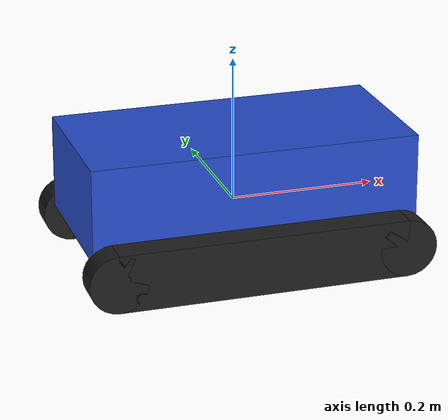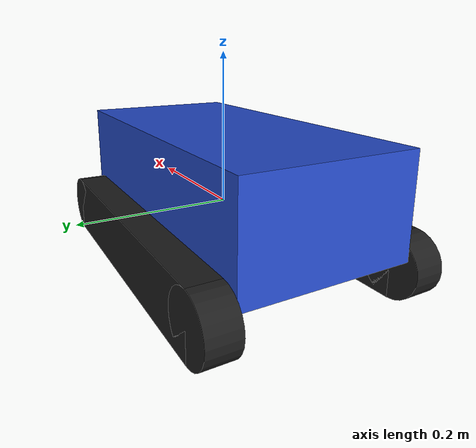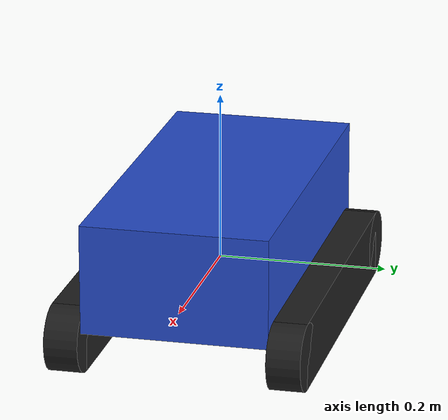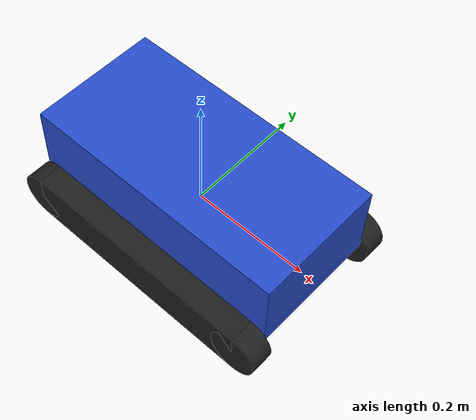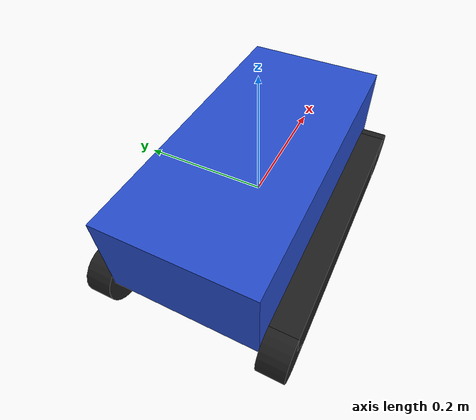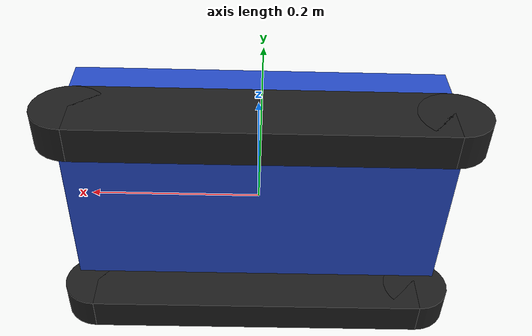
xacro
<?xml version="1.0" ?>

<robot name="eSAUl" xmlns:xacro="http://www.ros.org/wiki/xacro">

  <xacro:property name="chassis_mass" value="5" />
  <xacro:property name="chassis_length" value="0.45" />
  <xacro:property name="chassis_width" value="0.22" />
  <xacro:property name="chassis_height" value="0.13" />

  <xacro:property name="track_mass" value="1" />
  <xacro:property name="track_rad" value="0.04" />
  <xacro:property name="track_length" value="0.04" />

  <xacro:property name="box_length" value="0.4" />
  <xacro:property name="box_width" value="0.04" />
  <xacro:property name="box_height" value="0.08" />

  <xacro:property name="wheel_friction" value="1.75" />

  <!-- INERTIAL MACROS -->
  <xacro:macro name="null_inertial">
    <inertial>
      <mass value="0.001"/>
      <inertia ixx="0.001" ixy="0" ixz="0"
               iyy="0.001" iyz="0"
               izz="0.001"/>
      </inertial>
  </xacro:macro>

  <xacro:macro name="solid_cuboid_inertial"
               params="width length height mass *origin">
    <inertial>
      <xacro:insert_block name="origin"/>
      <mass value="${mass}"/>
      <inertia ixx="${mass * (width * width + height * height) / 12}"
               ixy="0" ixz="0"
               iyy="${mass * (length * length + height * height) / 12}"
               iyz="0"
               izz="${mass * (width * width + length * length) / 12}"/>
    </inertial>
  </xacro:macro>

  <xacro:macro name="solid_cylinder_inertial"
               params="r h mass *origin">
    <inertial>
      <xacro:insert_block name="origin"/>
      <mass value="${mass}"/>
      <inertia ixx="${mass / 12 * (3 * r * r + h * h)}" ixy="0.0" ixz="0.0"
               iyy="${mass / 12 * (3 * r * r + h * h)}" iyz="0.0"
               izz="${mass / 2 * r * r}" />
    </inertial>
  </xacro:macro>
  <!-- INERTIAL MACROS END -->

  <link name="link_chassis">
    <collision>
      <geometry>
        <box size="${chassis_length} ${chassis_width} ${chassis_height}"/>
      </geometry>
    </collision>
    <visual>
      <origin rpy="0 0 0" xyz="0 0 ${track_rad}"/>
      <geometry>
        <box size="${chassis_length} ${chassis_width} ${chassis_height}"/>
      </geometry>
      <material name="blue"/>
    </visual>
    <xacro:solid_cuboid_inertial
          length="${chassis_length}" width="${chassis_width}"
          height="${chassis_height}" mass="${chassis_mass}">
      <origin xyz="0 0 0" rpy="0 0 0" />
    </xacro:solid_cuboid_inertial>
  </link>

  <xacro:macro name="link_track" params="name">
    <link name="${name}">
      <collision name="${name}_track_col_box">
        <origin rpy="0 0 0" xyz="0 0 0"/>
        <geometry>
          <box size="${box_length} ${box_width} ${box_height}"/>
        </geometry>
      </collision>
      <visual name="${name}_track_vis_box">
        <origin rpy="0 0 0" xyz="0 0 0"/>
        <geometry>
          <box size="${box_length} ${box_width} ${box_height}"/>
        </geometry>
      </visual>
      <collision name="${name}_track_col_back_wheel">
        <origin rpy="0 1.5708 1.5708" xyz="${-box_length/2} 0 0"/>
        <geometry>
          <cylinder length="${track_length}" radius="${track_rad}"/>
        </geometry>
      </collision>
      <visual name="${name}_track_vis_back_wheel">
        <origin rpy="0 1.5708 1.5708" xyz="${-box_length/2} 0 0"/>
        <geometry>
          <cylinder length="${track_length}" radius="${track_rad}"/>
        </geometry>
      </visual>
      <collision name="${name}_track_col_front_wheel">
        <origin rpy="0 1.5708 1.5708" xyz="${box_length/2} 0 0"/>
        <geometry>
          <cylinder length="${track_length}" radius="${track_rad}"/>
        </geometry>
      </collision>
      <visual name="${name}_track_vis_front_wheel">
        <origin rpy="0 1.5708 1.5708" xyz="${box_length/2} 0 0"/>
        <geometry>
          <cylinder length="${track_length}" radius="${track_rad}"/>
        </geometry>
      </visual>
      <xacro:solid_cuboid_inertial
            length="${chassis_length}" width="${chassis_width}"
            height="${chassis_height}" mass="${chassis_mass}">
        <origin xyz="0 0 0" rpy="0 0 0" />
      </xacro:solid_cuboid_inertial>
    </link>
    <gazebo reference="${name}">
      <mu1>${wheel_friction}</mu1>
      <mu2>${wheel_friction}</mu2>
      <material>Gazebo/Black</material>
      <kp>10000000</kp>
      <kd>1</kd>
    </gazebo>
  </xacro:macro>

  <xacro:macro name="joint_wheel" params="name child origin_xyz">
    <joint name="${name}" type="fixed">
      <origin rpy="0 0 0" xyz="${origin_xyz}"/>
      <child link="${child}"/>
      <parent link="link_chassis"/>
    </joint>
    <gazebo reference="${name}">
      <!-- This one is used to disable convertion of fixed joints into links -->
      <preserveFixedJoint>true</preserveFixedJoint>
    </gazebo>
  </xacro:macro>

	<xacro:link_track name="track_left" />
	<xacro:joint_wheel name="joint_left" child="track_left" origin_xyz="0 ${-chassis_width/2-box_width/2} ${-track_rad}" />

	<xacro:link_track name="track_right" />
	<xacro:joint_wheel name="joint_right" child="track_right" origin_xyz="0 ${chassis_width/2+box_width/2} ${-track_rad}" />

	<gazebo>
    <plugin filename="libESAUL_plugin.so" name="simple_tracked_vehicle">
        <body>link_chassis</body>
        <left_track>track_left</left_track>
        <right_track>track_right</right_track>
        <track_mu>2</track_mu>
        <track_mu2>0.5</track_mu2>
    </plugin>
	</gazebo>

 </robot>
